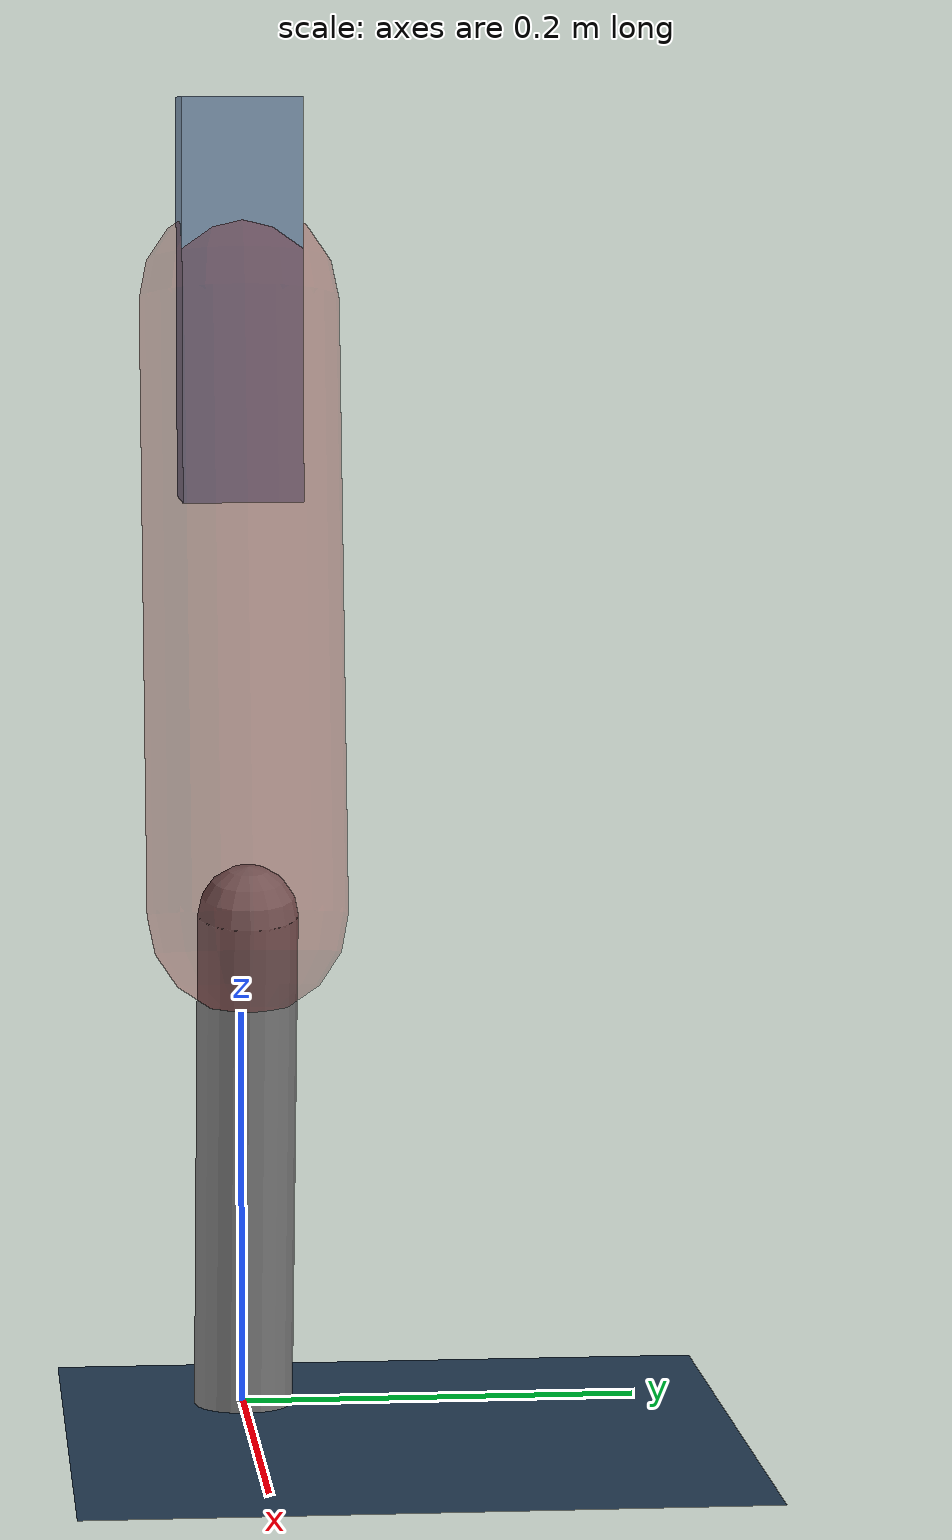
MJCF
<mujoco model="Hopper2D">
	<compiler inertiafromgeom="true" angle="radian" />
	<option timestep="0.001" integrator="implicit" cone="elliptic" solver="Newton" tolerance="1e-10" />

	<default>
		<geom contype="1" conaffinity="1" condim="3" friction="2 0.005 0.0001" solref="0.005 1" />
		<joint limited="true" damping="0.1" />
	</default>

	<asset>
		<texture name="skybox" type="skybox" builtin="gradient" rgb1=".4 .6 .8" rgb2="0 0 0" width="800" height="800" />
		<texture name="grid" type="2d" builtin="checker" rgb1=".1 .2 .3" rgb2=".2 .3 .4" width="300" height="300" mark="edge" markrgb=".2 .3 .4" />
		<material name="ground" texture="grid" texrepeat="1 1" texuniform="true" reflectance="0.1" />
		<material name="leg" rgba="0.5 0.6 0.7 1" />
	</asset>

	<worldbody>

		<geom name="floor" type="plane" size="5 5 0.25" material="ground" />

		<light directional="false" diffuse="0.8 0.8 0.8" specular="0.3 0.3 0.3" pos="0 0 2" dir="0 0 -1" />
		<light mode="targetbodycom" target="base" directional="false" diffuse="0.8 0.8 0.8" specular="0.3 0.3 0.3" pos="0 0 2" dir="0 0 -1" />

		<camera name="fixed" pos="0 -2 1" xyaxes="1 0 0 0 0 1" />
		<camera name="tracking" mode="trackcom" pos="0 -3 1" />

		<body name="root" pos="0 0 0.5602279334186563">
			<joint name="slide_x" type="slide" axis="1 0 0" range="-100 100" />
			<joint name="slide_z" type="slide" axis="0 0 1" range="0 10" />

			<body name="base" pos="0 0 0">
				<geom name="torso" type="box" size="0.03 0.03 0.1" mass="1.612" material="leg" />

				<body name="link1" pos="0 0 0" euler="0 1.3975819583133187 0">
					<joint type="hinge" axis="0 -1 0" pos="0 0 0" name="hinge1" limited="true" range="-3.14 3.14" stiffness="0" damping="0.1" />
					<geom name="thigh" type="capsule" fromto="0 0 0 0.30746768330480434 0 0" size="0.05" rgba="0.5 0 0 0.3" mass="1.0089627449229717" />

					<body name="link2" pos="0.30746768330480434 0 0" euler="0 0.37628107413166634 0">
						<joint type="hinge" axis="0 -1 0" pos="0 0 0" name="hinge2" limited="true" range="-3.14 3.14" stiffness="0" damping="0.1" />
						<geom name="shank" type="capsule" fromto="0 0 0 0.26276025011385196 0 0" size="0.025" mass="0.45300820009108156" />

					</body>
				</body>
			</body>
		</body>
	</worldbody>

	<actuator>
		<motor name="torque1" joint="hinge1" ctrlrange="-9.30795776282969 9.30795776282969" ctrllimited="true" gear="1" />
		<motor name="torque2" joint="hinge2" ctrlrange="-76.5995381995787 76.5995381995787" ctrllimited="true" gear="1" />
	</actuator>
</mujoco>
